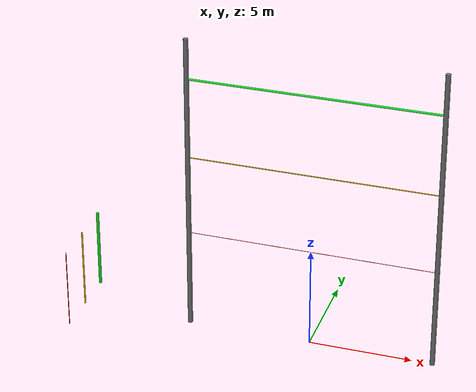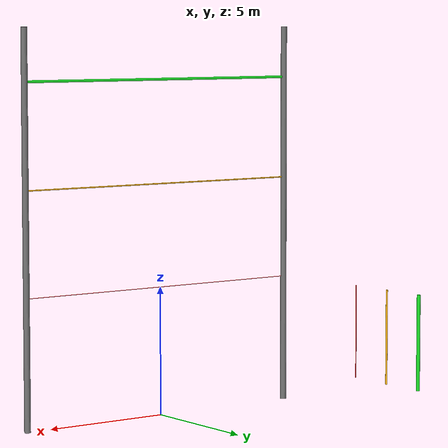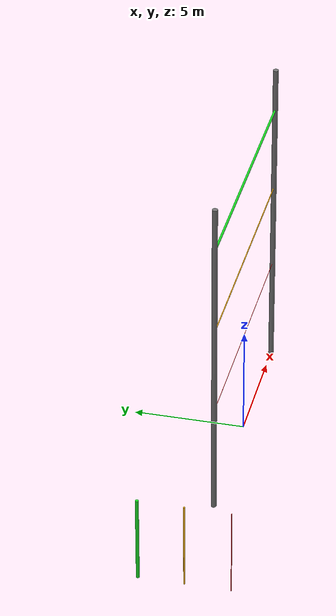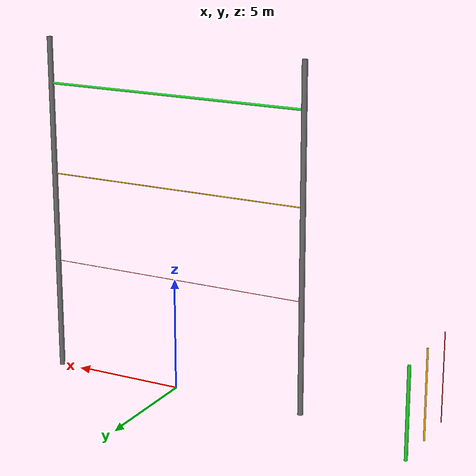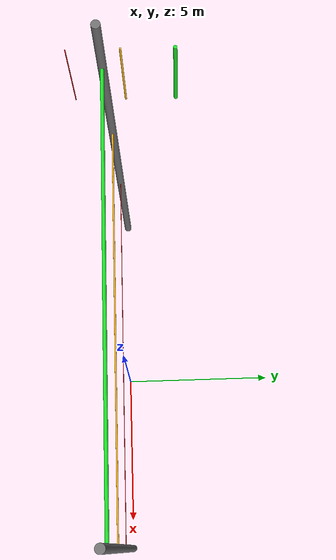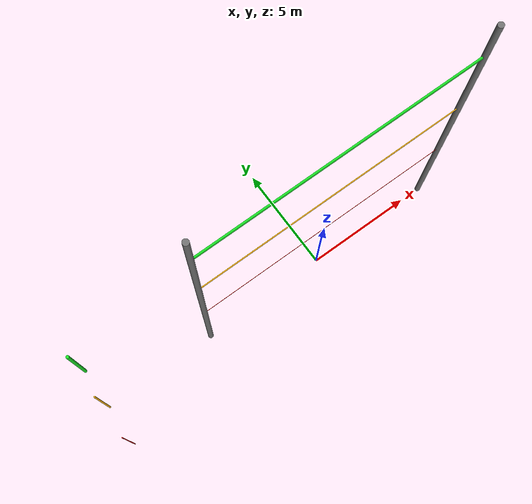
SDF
<?xml version="1.0" encoding="UTF-8"?>
<sdf version="1.9">
  <model name="wire_test_gate">
    <static>true</static>
    <link name="wire_gate_link">
      <!-- Support posts: 0.24 m diameter, 15 m high, spaced 12 m apart. -->
      <collision name="west_post_collision">
        <pose>-6 0 7.5 0 0 0</pose>
        <geometry><cylinder><radius>0.12</radius><length>15</length></cylinder></geometry>
      </collision>
      <visual name="west_post_visual">
        <pose>-6 0 7.5 0 0 0</pose>
        <geometry><cylinder><radius>0.12</radius><length>15</length></cylinder></geometry>
        <material><ambient>0.25 0.25 0.25 1</ambient><diffuse>0.45 0.45 0.45 1</diffuse></material>
      </visual>
      <collision name="east_post_collision">
        <pose>6 0 7.5 0 0 0</pose>
        <geometry><cylinder><radius>0.12</radius><length>15</length></cylinder></geometry>
      </collision>
      <visual name="east_post_visual">
        <pose>6 0 7.5 0 0 0</pose>
        <geometry><cylinder><radius>0.12</radius><length>15</length></cylinder></geometry>
        <material><ambient>0.25 0.25 0.25 1</ambient><diffuse>0.45 0.45 0.45 1</diffuse></material>
      </visual>

      <collision name="wire_20mm_collision">
        <pose>0 0 5 0 1.57079632679 0</pose>
        <geometry><cylinder><radius>0.01</radius><length>12</length></cylinder></geometry>
      </collision>
      <visual name="wire_20mm_visual">
        <pose>0 0 5 0 1.57079632679 0</pose>
        <geometry><cylinder><radius>0.01</radius><length>12</length></cylinder></geometry>
        <material><ambient>0.85 0.08 0.08 1</ambient><diffuse>1.0 0.10 0.10 1</diffuse></material>
      </visual>
      <collision name="wire_50mm_collision">
        <pose>0 0 9 0 1.57079632679 0</pose>
        <geometry><cylinder><radius>0.025</radius><length>12</length></cylinder></geometry>
      </collision>
      <visual name="wire_50mm_visual">
        <pose>0 0 9 0 1.57079632679 0</pose>
        <geometry><cylinder><radius>0.025</radius><length>12</length></cylinder></geometry>
        <material><ambient>0.85 0.55 0.05 1</ambient><diffuse>1.0 0.72 0.08 1</diffuse></material>
      </visual>
      <collision name="wire_100mm_collision">
        <pose>0 0 13 0 1.57079632679 0</pose>
        <geometry><cylinder><radius>0.05</radius><length>12</length></cylinder></geometry>
      </collision>
      <visual name="wire_100mm_visual">
        <pose>0 0 13 0 1.57079632679 0</pose>
        <geometry><cylinder><radius>0.05</radius><length>12</length></cylinder></geometry>
        <material><ambient>0.08 0.65 0.12 1</ambient><diffuse>0.10 0.90 0.15 1</diffuse></material>
      </visual>

      <!-- Graduated small-object array: 40, 80, and 150 mm diameters. -->
      <collision name="rod_40mm_collision">
        <pose>-11.5 -2 2 0 0 0</pose>
        <geometry><cylinder><radius>0.02</radius><length>4</length></cylinder></geometry>
      </collision>
      <visual name="rod_40mm_visual">
        <pose>-11.5 -2 2 0 0 0</pose>
        <geometry><cylinder><radius>0.02</radius><length>4</length></cylinder></geometry>
        <material><ambient>0.85 0.08 0.08 1</ambient><diffuse>1.0 0.10 0.10 1</diffuse></material>
      </visual>
      <collision name="rod_80mm_collision">
        <pose>-11.5 0 2 0 0 0</pose>
        <geometry><cylinder><radius>0.04</radius><length>4</length></cylinder></geometry>
      </collision>
      <visual name="rod_80mm_visual">
        <pose>-11.5 0 2 0 0 0</pose>
        <geometry><cylinder><radius>0.04</radius><length>4</length></cylinder></geometry>
        <material><ambient>0.85 0.55 0.05 1</ambient><diffuse>1.0 0.72 0.08 1</diffuse></material>
      </visual>
      <collision name="rod_150mm_collision">
        <pose>-11.5 2 2 0 0 0</pose>
        <geometry><cylinder><radius>0.075</radius><length>4</length></cylinder></geometry>
      </collision>
      <visual name="rod_150mm_visual">
        <pose>-11.5 2 2 0 0 0</pose>
        <geometry><cylinder><radius>0.075</radius><length>4</length></cylinder></geometry>
        <material><ambient>0.08 0.65 0.12 1</ambient><diffuse>0.10 0.90 0.15 1</diffuse></material>
      </visual>
    </link>
  </model>
</sdf>
